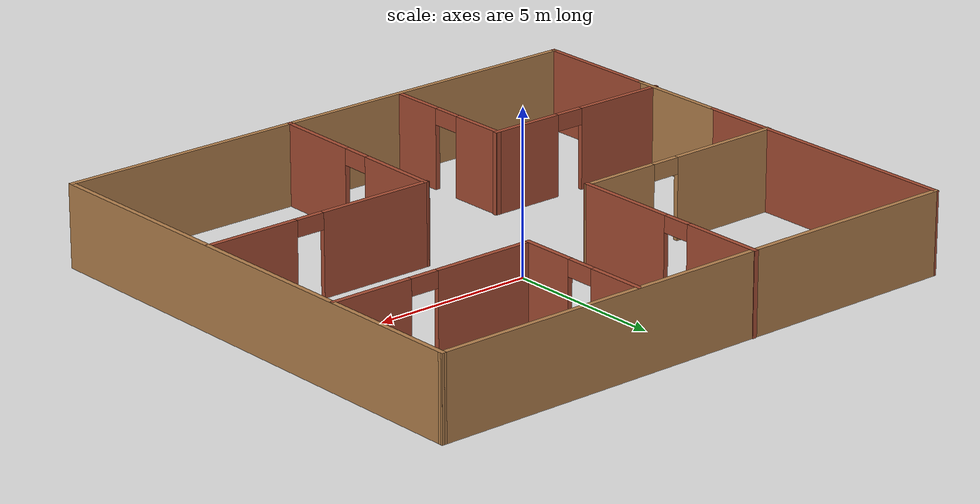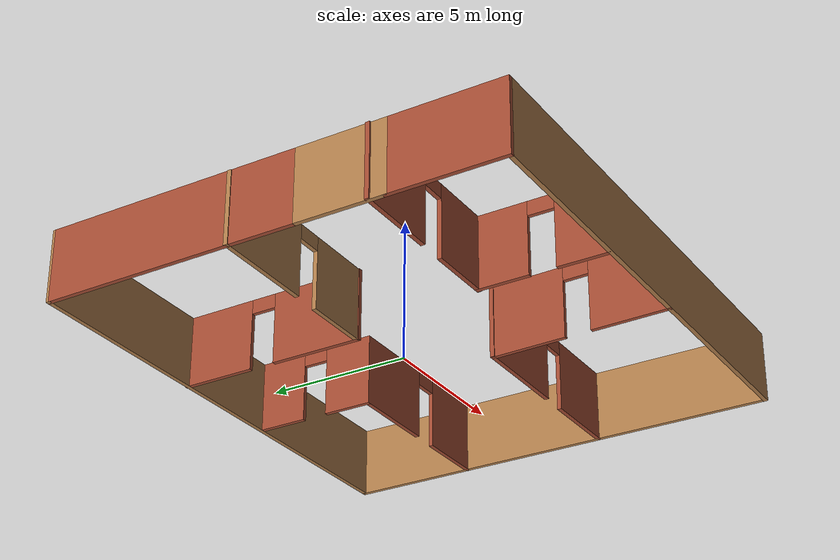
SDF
<?xml version='1.0'?>
<sdf version='1.6'>
  <model name='my_building'>
    <pose frame=''>0.059936 -0.714894 0 0 -0 0</pose>
    <link name='Wall_1'>
      <collision name='Wall_1_Collision'>
        <geometry>
          <box>
            <size>3.25 0.15 2.5</size>
          </box>
        </geometry>
        <pose frame=''>0 0 1.25 0 -0 0</pose>
      </collision>
      <visual name='Wall_1_Visual'>
        <pose frame=''>0 0 1.25 0 -0 0</pose>
        <geometry>
          <box>
            <size>3.25 0.15 2.5</size>
          </box>
        </geometry>
        <material>
          <script>
            <uri>file://media/materials/scripts/gazebo.material</uri>
            <name>Gazebo/Wood</name>
          </script>
          <ambient>1 1 1 1</ambient>
        </material>
      </visual>
      <pose frame=''>-8.76994 -2.52511 0 0 0 -1.5708</pose>
    </link>
    <link name='Wall_10'>
      <pose frame=''>-1.91645 4.60169 0 0 -0 1.5708</pose>
      <visual name='Wall_10_Visual_0'>
        <pose frame=''>-1.75539 0 1.25 0 -0 0</pose>
        <geometry>
          <box>
            <size>3.26293 0.15 2.5</size>
          </box>
        </geometry>
        <material>
          <script>
            <uri>file://media/materials/scripts/gazebo.material</uri>
            <name>Gazebo/Bricks</name>
          </script>
          <ambient>1 1 1 1</ambient>
        </material>
      </visual>
      <collision name='Wall_10_Collision_0'>
        <geometry>
          <box>
            <size>3.26293 0.15 2.5</size>
          </box>
        </geometry>
        <pose frame=''>-1.75539 0 1.25 0 -0 0</pose>
      </collision>
      <visual name='Wall_10_Visual_1'>
        <pose frame=''>2.08147 0 1.25 0 -0 0</pose>
        <geometry>
          <box>
            <size>2.61077 0.15 2.5</size>
          </box>
        </geometry>
        <material>
          <script>
            <uri>file://media/materials/scripts/gazebo.material</uri>
            <name>Gazebo/Bricks</name>
          </script>
          <ambient>1 1 1 1</ambient>
        </material>
      </visual>
      <collision name='Wall_10_Collision_1'>
        <geometry>
          <box>
            <size>2.61077 0.15 2.5</size>
          </box>
        </geometry>
        <pose frame=''>2.08147 0 1.25 0 -0 0</pose>
      </collision>
      <visual name='Wall_10_Visual_2'>
        <pose frame=''>0.326079 0 2.25 0 -0 0</pose>
        <geometry>
          <box>
            <size>0.9 0.15 0.5</size>
          </box>
        </geometry>
        <material>
          <script>
            <uri>file://media/materials/scripts/gazebo.material</uri>
            <name>Gazebo/Bricks</name>
          </script>
          <ambient>1 1 1 1</ambient>
        </material>
      </visual>
      <collision name='Wall_10_Collision_2'>
        <geometry>
          <box>
            <size>0.9 0.15 0.5</size>
          </box>
        </geometry>
        <pose frame=''>0.326079 0 2.25 0 -0 0</pose>
      </collision>
    </link>
    <link name='Wall_12'>
      <pose frame=''>2.18846 5.72608 0 0 0 -1.5708</pose>
      <visual name='Wall_12_Visual_0'>
        <pose frame=''>-1.31814 0 1.25 0 -0 0</pose>
        <geometry>
          <box>
            <size>1.86373 0.15 2.5</size>
          </box>
        </geometry>
        <material>
          <script>
            <uri>file://media/materials/scripts/gazebo.material</uri>
            <name>Gazebo/Bricks</name>
          </script>
          <ambient>1 1 1 1</ambient>
        </material>
      </visual>
      <collision name='Wall_12_Collision_0'>
        <geometry>
          <box>
            <size>1.86373 0.15 2.5</size>
          </box>
        </geometry>
        <pose frame=''>-1.31814 0 1.25 0 -0 0</pose>
      </collision>
      <visual name='Wall_12_Visual_1'>
        <pose frame=''>1.38186 0 1.25 0 -0 0</pose>
        <geometry>
          <box>
            <size>1.73627 0.15 2.5</size>
          </box>
        </geometry>
        <material>
          <script>
            <uri>file://media/materials/scripts/gazebo.material</uri>
            <name>Gazebo/Bricks</name>
          </script>
          <ambient>1 1 1 1</ambient>
        </material>
      </visual>
      <collision name='Wall_12_Collision_1'>
        <geometry>
          <box>
            <size>1.73627 0.15 2.5</size>
          </box>
        </geometry>
        <pose frame=''>1.38186 0 1.25 0 -0 0</pose>
      </collision>
      <visual name='Wall_12_Visual_2'>
        <pose frame=''>0.063728 0 2.25 0 -0 0</pose>
        <geometry>
          <box>
            <size>0.9 0.15 0.5</size>
          </box>
        </geometry>
        <material>
          <script>
            <uri>file://media/materials/scripts/gazebo.material</uri>
            <name>Gazebo/Bricks</name>
          </script>
          <ambient>1 1 1 1</ambient>
        </material>
      </visual>
      <collision name='Wall_12_Collision_2'>
        <geometry>
          <box>
            <size>0.9 0.15 0.5</size>
          </box>
        </geometry>
        <pose frame=''>0.063728 0 2.25 0 -0 0</pose>
      </collision>
    </link>
    <link name='Wall_13'>
      <pose frame=''>5.48846 3.55108 0 0 -0 0</pose>
      <visual name='Wall_13_Visual_0'>
        <pose frame=''>-1.74353 0 1.25 0 -0 0</pose>
        <geometry>
          <box>
            <size>3.26293 0.15 2.5</size>
          </box>
        </geometry>
        <material>
          <script>
            <uri>file://media/materials/scripts/gazebo.material</uri>
            <name>Gazebo/Bricks</name>
          </script>
          <ambient>1 1 1 1</ambient>
        </material>
      </visual>
      <collision name='Wall_13_Collision_0'>
        <geometry>
          <box>
            <size>3.26293 0.15 2.5</size>
          </box>
        </geometry>
        <pose frame=''>-1.74353 0 1.25 0 -0 0</pose>
      </collision>
      <visual name='Wall_13_Visual_1'>
        <pose frame=''>2.08147 0 1.25 0 -0 0</pose>
        <geometry>
          <box>
            <size>2.58707 0.15 2.5</size>
          </box>
        </geometry>
        <material>
          <script>
            <uri>file://media/materials/scripts/gazebo.material</uri>
            <name>Gazebo/Bricks</name>
          </script>
          <ambient>1 1 1 1</ambient>
        </material>
      </visual>
      <collision name='Wall_13_Collision_1'>
        <geometry>
          <box>
            <size>2.58707 0.15 2.5</size>
          </box>
        </geometry>
        <pose frame=''>2.08147 0 1.25 0 -0 0</pose>
      </collision>
      <visual name='Wall_13_Visual_2'>
        <pose frame=''>0.337933 0 2.25 0 -0 0</pose>
        <geometry>
          <box>
            <size>0.9 0.15 0.5</size>
          </box>
        </geometry>
        <material>
          <script>
            <uri>file://media/materials/scripts/gazebo.material</uri>
            <name>Gazebo/Bricks</name>
          </script>
          <ambient>1 1 1 1</ambient>
        </material>
      </visual>
      <collision name='Wall_13_Collision_2'>
        <geometry>
          <box>
            <size>0.9 0.15 0.5</size>
          </box>
        </geometry>
        <pose frame=''>0.337933 0 2.25 0 -0 0</pose>
      </collision>
    </link>
    <link name='Wall_15'>
      <pose frame=''>-5.78798 -3.53742 0 0 -0 0</pose>
      <visual name='Wall_15_Visual_0'>
        <pose frame=''>-1.62574 0 1.25 0 -0 0</pose>
        <geometry>
          <box>
            <size>2.98309 0.15 2.5</size>
          </box>
        </geometry>
        <material>
          <script>
            <uri>file://media/materials/scripts/gazebo.material</uri>
            <name>Gazebo/Bricks</name>
          </script>
          <ambient>1 1 1 1</ambient>
        </material>
      </visual>
      <collision name='Wall_15_Collision_0'>
        <geometry>
          <box>
            <size>2.98309 0.15 2.5</size>
          </box>
        </geometry>
        <pose frame=''>-1.62574 0 1.25 0 -0 0</pose>
      </collision>
      <visual name='Wall_15_Visual_1'>
        <pose frame=''>1.94155 0 1.25 0 -0 0</pose>
        <geometry>
          <box>
            <size>2.35149 0.15 2.5</size>
          </box>
        </geometry>
        <material>
          <script>
            <uri>file://media/materials/scripts/gazebo.material</uri>
            <name>Gazebo/Bricks</name>
          </script>
          <ambient>1 1 1 1</ambient>
        </material>
      </visual>
      <collision name='Wall_15_Collision_1'>
        <geometry>
          <box>
            <size>2.35149 0.15 2.5</size>
          </box>
        </geometry>
        <pose frame=''>1.94155 0 1.25 0 -0 0</pose>
      </collision>
      <visual name='Wall_15_Visual_2'>
        <pose frame=''>0.315801 0 2.25 0 -0 0</pose>
        <geometry>
          <box>
            <size>0.9 0.15 0.5</size>
          </box>
        </geometry>
        <material>
          <script>
            <uri>file://media/materials/scripts/gazebo.material</uri>
            <name>Gazebo/Bricks</name>
          </script>
          <ambient>1 1 1 1</ambient>
        </material>
      </visual>
      <collision name='Wall_15_Collision_2'>
        <geometry>
          <box>
            <size>0.9 0.15 0.5</size>
          </box>
        </geometry>
        <pose frame=''>0.315801 0 2.25 0 -0 0</pose>
      </collision>
    </link>
    <link name='Wall_16'>
      <pose frame=''>-2.78067 -5.71242 0 0 0 -1.5708</pose>
      <visual name='Wall_16_Visual_0'>
        <pose frame=''>-1.33563 0 1.25 0 -0 0</pose>
        <geometry>
          <box>
            <size>1.82875 0.15 2.5</size>
          </box>
        </geometry>
        <material>
          <script>
            <uri>file://media/materials/scripts/gazebo.material</uri>
            <name>Gazebo/Bricks</name>
          </script>
          <ambient>1 1 1 1</ambient>
        </material>
      </visual>
      <collision name='Wall_16_Collision_0'>
        <geometry>
          <box>
            <size>1.82875 0.15 2.5</size>
          </box>
        </geometry>
        <pose frame=''>-1.33563 0 1.25 0 -0 0</pose>
      </collision>
      <visual name='Wall_16_Visual_1'>
        <pose frame=''>1.36437 0 1.25 0 -0 0</pose>
        <geometry>
          <box>
            <size>1.77125 0.15 2.5</size>
          </box>
        </geometry>
        <material>
          <script>
            <uri>file://media/materials/scripts/gazebo.material</uri>
            <name>Gazebo/Bricks</name>
          </script>
          <ambient>1 1 1 1</ambient>
        </material>
      </visual>
      <collision name='Wall_16_Collision_1'>
        <geometry>
          <box>
            <size>1.77125 0.15 2.5</size>
          </box>
        </geometry>
        <pose frame=''>1.36437 0 1.25 0 -0 0</pose>
      </collision>
      <visual name='Wall_16_Visual_2'>
        <pose frame=''>0.028748 0 2.25 0 -0 0</pose>
        <geometry>
          <box>
            <size>0.9 0.15 0.5</size>
          </box>
        </geometry>
        <material>
          <script>
            <uri>file://media/materials/scripts/gazebo.material</uri>
            <name>Gazebo/Bricks</name>
          </script>
          <ambient>1 1 1 1</ambient>
        </material>
      </visual>
      <collision name='Wall_16_Collision_2'>
        <geometry>
          <box>
            <size>0.9 0.15 0.5</size>
          </box>
        </geometry>
        <pose frame=''>0.028748 0 2.25 0 -0 0</pose>
      </collision>
    </link>
    <link name='Wall_18'>
      <pose frame=''>1.31396 -4.82289 0 0 -0 1.54814</pose>
      <visual name='Wall_18_Visual_0'>
        <pose frame=''>-1.79453 0 1.25 0 -0 0</pose>
        <geometry>
          <box>
            <size>2.73664 0.15 2.5</size>
          </box>
        </geometry>
        <material>
          <script>
            <uri>file://media/materials/scripts/gazebo.material</uri>
            <name>Gazebo/Bricks</name>
          </script>
          <ambient>1 1 1 1</ambient>
        </material>
      </visual>
      <collision name='Wall_18_Collision_0'>
        <geometry>
          <box>
            <size>2.73664 0.15 2.5</size>
          </box>
        </geometry>
        <pose frame=''>-1.79453 0 1.25 0 -0 0</pose>
      </collision>
      <visual name='Wall_18_Visual_1'>
        <pose frame=''>1.81832 0 1.25 0 -0 0</pose>
        <geometry>
          <box>
            <size>2.68905 0.15 2.5</size>
          </box>
        </geometry>
        <material>
          <script>
            <uri>file://media/materials/scripts/gazebo.material</uri>
            <name>Gazebo/Bricks</name>
          </script>
          <ambient>1 1 1 1</ambient>
        </material>
      </visual>
      <collision name='Wall_18_Collision_1'>
        <geometry>
          <box>
            <size>2.68905 0.15 2.5</size>
          </box>
        </geometry>
        <pose frame=''>1.81832 0 1.25 0 -0 0</pose>
      </collision>
      <visual name='Wall_18_Visual_2'>
        <pose frame=''>0.023794 0 2.25 0 -0 0</pose>
        <geometry>
          <box>
            <size>0.9 0.15 0.5</size>
          </box>
        </geometry>
        <material>
          <script>
            <uri>file://media/materials/scripts/gazebo.material</uri>
            <name>Gazebo/Bricks</name>
          </script>
          <ambient>1 1 1 1</ambient>
        </material>
      </visual>
      <collision name='Wall_18_Collision_2'>
        <geometry>
          <box>
            <size>0.9 0.15 0.5</size>
          </box>
        </geometry>
        <pose frame=''>0.023794 0 2.25 0 -0 0</pose>
      </collision>
    </link>
    <link name='Wall_19'>
      <pose frame=''>5.08619 -1.73583 0 0 -0 0</pose>
      <visual name='Wall_19_Visual_0'>
        <pose frame=''>-1.95341 0 1.25 0 -0 0</pose>
        <geometry>
          <box>
            <size>3.71767 0.15 2.5</size>
          </box>
        </geometry>
        <material>
          <script>
            <uri>file://media/materials/scripts/gazebo.material</uri>
            <name>Gazebo/Bricks</name>
          </script>
          <ambient>1 1 1 1</ambient>
        </material>
      </visual>
      <collision name='Wall_19_Collision_0'>
        <geometry>
          <box>
            <size>3.71767 0.15 2.5</size>
          </box>
        </geometry>
        <pose frame=''>-1.95341 0 1.25 0 -0 0</pose>
      </collision>
      <visual name='Wall_19_Visual_1'>
        <pose frame=''>2.30884 0 1.25 0 -0 0</pose>
        <geometry>
          <box>
            <size>3.00683 0.15 2.5</size>
          </box>
        </geometry>
        <material>
          <script>
            <uri>file://media/materials/scripts/gazebo.material</uri>
            <name>Gazebo/Bricks</name>
          </script>
          <ambient>1 1 1 1</ambient>
        </material>
      </visual>
      <collision name='Wall_19_Collision_1'>
        <geometry>
          <box>
            <size>3.00683 0.15 2.5</size>
          </box>
        </geometry>
        <pose frame=''>2.30884 0 1.25 0 -0 0</pose>
      </collision>
      <visual name='Wall_19_Visual_2'>
        <pose frame=''>0.355423 0 2.25 0 -0 0</pose>
        <geometry>
          <box>
            <size>0.9 0.15 0.5</size>
          </box>
        </geometry>
        <material>
          <script>
            <uri>file://media/materials/scripts/gazebo.material</uri>
            <name>Gazebo/Bricks</name>
          </script>
          <ambient>1 1 1 1</ambient>
        </material>
      </visual>
      <collision name='Wall_19_Collision_2'>
        <geometry>
          <box>
            <size>0.9 0.15 0.5</size>
          </box>
        </geometry>
        <pose frame=''>0.355423 0 2.25 0 -0 0</pose>
      </collision>
    </link>
    <link name='Wall_3'>
      <collision name='Wall_3_Collision'>
        <geometry>
          <box>
            <size>4 0.15 2.5</size>
          </box>
        </geometry>
        <pose frame=''>0 0 1.25 0 -0 0</pose>
      </collision>
      <visual name='Wall_3_Visual'>
        <pose frame=''>0 0 1.25 0 -0 0</pose>
        <geometry>
          <box>
            <size>4 0.15 2.5</size>
          </box>
        </geometry>
        <material>
          <script>
            <uri>file://media/materials/scripts/gazebo.material</uri>
            <name>Gazebo/Bricks</name>
          </script>
          <ambient>1 1 1 1</ambient>
        </material>
      </visual>
      <pose frame=''>-8.76994 -6.00011 0 0 0 -1.5708</pose>
    </link>
    <link name='Wall_4'>
      <collision name='Wall_4_Collision'>
        <geometry>
          <box>
            <size>17.75 0.15 2.5</size>
          </box>
        </geometry>
        <pose frame=''>0 0 1.25 0 -0 0</pose>
      </collision>
      <visual name='Wall_4_Visual'>
        <pose frame=''>0 0 1.25 0 -0 0</pose>
        <geometry>
          <box>
            <size>17.75 0.15 2.5</size>
          </box>
        </geometry>
        <material>
          <script>
            <uri>file://media/materials/scripts/gazebo.material</uri>
            <name>Gazebo/Wood</name>
          </script>
          <ambient>1 1 1 1</ambient>
        </material>
      </visual>
      <pose frame=''>0.030064 -7.92511 0 0 -0 0</pose>
    </link>
    <link name='Wall_5'>
      <collision name='Wall_5_Collision'>
        <geometry>
          <box>
            <size>16 0.15 2.5</size>
          </box>
        </geometry>
        <pose frame=''>0 0 1.25 0 -0 0</pose>
      </collision>
      <visual name='Wall_5_Visual'>
        <pose frame=''>0 0 1.25 0 -0 0</pose>
        <geometry>
          <box>
            <size>16 0.15 2.5</size>
          </box>
        </geometry>
        <material>
          <script>
            <uri>file://media/materials/scripts/gazebo.material</uri>
            <name>Gazebo/Wood</name>
          </script>
          <ambient>1 1 1 1</ambient>
        </material>
      </visual>
      <pose frame=''>8.83006 -0.000106 0 0 -0 1.5708</pose>
    </link>
    <link name='Wall_6'>
      <collision name='Wall_6_Collision'>
        <geometry>
          <box>
            <size>17.7501 0.15 2.5</size>
          </box>
        </geometry>
        <pose frame=''>0 0 1.25 0 -0 0</pose>
      </collision>
      <visual name='Wall_6_Visual'>
        <pose frame=''>0 0 1.25 0 -0 0</pose>
        <geometry>
          <box>
            <size>17.7501 0.15 2.5</size>
          </box>
        </geometry>
        <material>
          <script>
            <uri>file://media/materials/scripts/gazebo.material</uri>
            <name>Gazebo/Wood</name>
          </script>
          <ambient>1 1 1 1</ambient>
        </material>
      </visual>
      <pose frame=''>0.030064 7.89989 0 0 0 -3.13875</pose>
    </link>
    <link name='Wall_7'>
      <collision name='Wall_7_Collision'>
        <geometry>
          <box>
            <size>9 0.15 2.5</size>
          </box>
        </geometry>
        <pose frame=''>0 0 1.25 0 -0 0</pose>
      </collision>
      <visual name='Wall_7_Visual'>
        <pose frame=''>0 0 1.25 0 -0 0</pose>
        <geometry>
          <box>
            <size>9 0.15 2.5</size>
          </box>
        </geometry>
        <material>
          <script>
            <uri>file://media/materials/scripts/gazebo.material</uri>
            <name>Gazebo/Bricks</name>
          </script>
          <ambient>1 1 1 1</ambient>
        </material>
      </visual>
      <pose frame=''>-8.76994 3.44989 0 0 0 -1.5708</pose>
    </link>
    <link name='Wall_9'>
      <pose frame=''>-5.35587 1.28984 0 0 -0 0.01017</pose>
      <visual name='Wall_9_Visual_0'>
        <pose frame=''>-1.69114 0 1.25 0 -0 0</pose>
        <geometry>
          <box>
            <size>3.64666 0.15 2.5</size>
          </box>
        </geometry>
        <material>
          <script>
            <uri>file://media/materials/scripts/gazebo.material</uri>
            <name>Gazebo/Wood</name>
          </script>
          <ambient>1 1 1 1</ambient>
        </material>
      </visual>
      <collision name='Wall_9_Collision_0'>
        <geometry>
          <box>
            <size>3.64666 0.15 2.5</size>
          </box>
        </geometry>
        <pose frame=''>-1.69114 0 1.25 0 -0 0</pose>
      </collision>
      <visual name='Wall_9_Visual_1'>
        <pose frame=''>2.27333 0 1.25 0 -0 0</pose>
        <geometry>
          <box>
            <size>2.48228 0.15 2.5</size>
          </box>
        </geometry>
        <material>
          <script>
            <uri>file://media/materials/scripts/gazebo.material</uri>
            <name>Gazebo/Wood</name>
          </script>
          <ambient>1 1 1 1</ambient>
        </material>
      </visual>
      <collision name='Wall_9_Collision_1'>
        <geometry>
          <box>
            <size>2.48228 0.15 2.5</size>
          </box>
        </geometry>
        <pose frame=''>2.27333 0 1.25 0 -0 0</pose>
      </collision>
      <visual name='Wall_9_Visual_2'>
        <pose frame=''>0.582193 0 2.25 0 -0 0</pose>
        <geometry>
          <box>
            <size>0.9 0.15 0.5</size>
          </box>
        </geometry>
        <material>
          <script>
            <uri>file://media/materials/scripts/gazebo.material</uri>
            <name>Gazebo/Wood</name>
          </script>
          <ambient>1 1 1 1</ambient>
        </material>
      </visual>
      <collision name='Wall_9_Collision_2'>
        <geometry>
          <box>
            <size>0.9 0.15 0.5</size>
          </box>
        </geometry>
        <pose frame=''>0.582193 0 2.25 0 -0 0</pose>
      </collision>
    </link>
    <static>1</static>
  </model>
</sdf>
